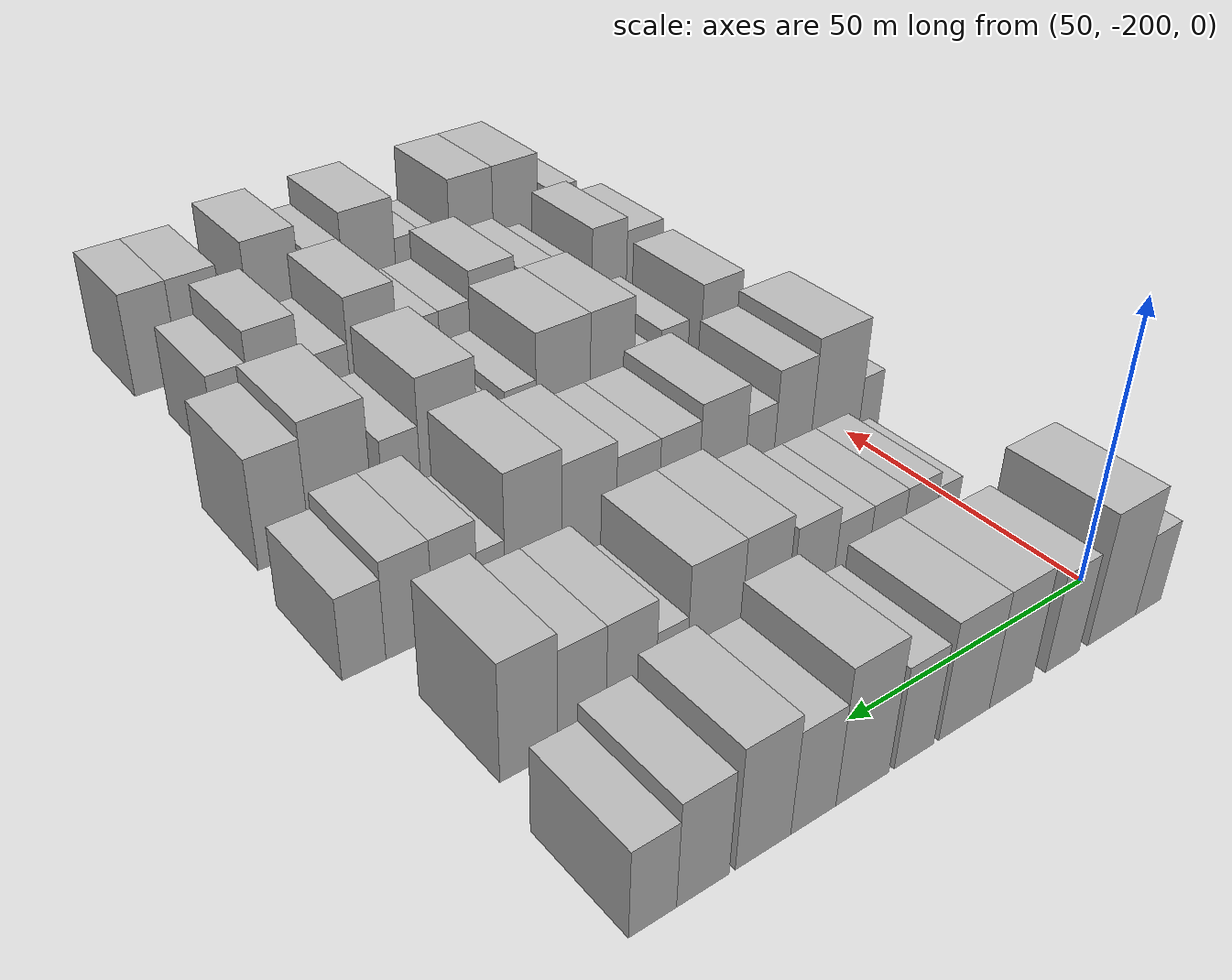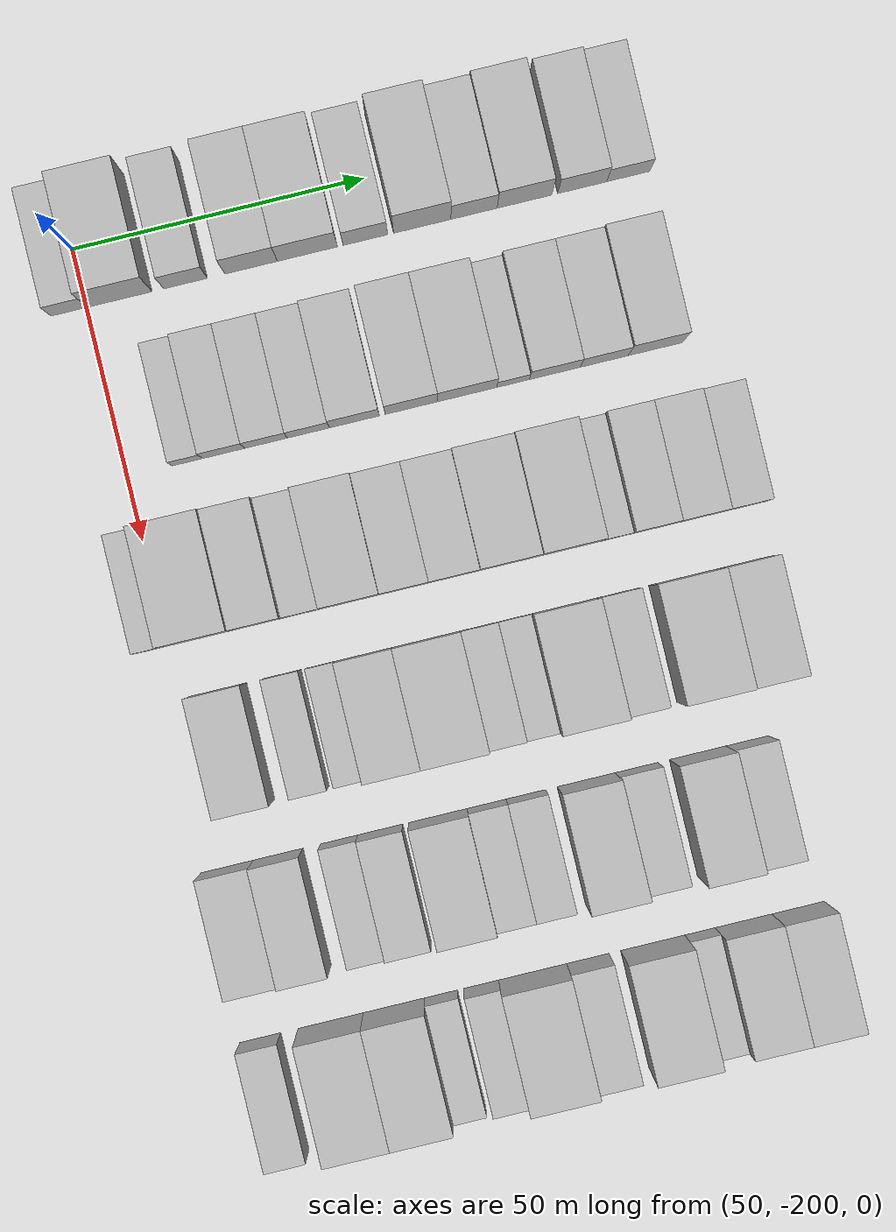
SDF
<sdf version="1.6">
 <world name="default">
  <model name="building_36">
   <static>1</static>
   <pose>50.0000 -202.9590 0 0.000000 0.000000 0.000000</pose>
   <link name="link">
    <pose>0 0 7.50 0 0 0</pose>
    <collision name="collision"><geometry><box><size>20.0000 6.1561 15.0000</size></box></geometry></collision>
    <visual name="visual">
     <cast_shadows>0</cast_shadows>
     <geometry><box><size>20.0000 6.1561 15.0000</size></box></geometry>
     <material>
      <script>
       <uri>model://HANNAS_wall/materials/scripts</uri>
       <uri>model://HANNAS_wall/materials/textures</uri>
       <name>vrc/HANNAS_wall</name>
      </script>
     </material>
    </visual>
   </link>
  </model>
  <model name="building_37">
   <static>1</static>
   <pose>50.0000 -194.3039 0 0.000000 0.000000 0.000000</pose>
   <link name="link">
    <pose>0 0 12.00 0 0 0</pose>
    <collision name="collision"><geometry><box><size>20.0000 11.1541 24.0000</size></box></geometry></collision>
    <visual name="visual">
     <cast_shadows>0</cast_shadows>
     <geometry><box><size>20.0000 11.1541 24.0000</size></box></geometry>
     <material>
      <script>
       <uri>model://HANNAS_wall/materials/scripts</uri>
       <uri>model://HANNAS_wall/materials/textures</uri>
       <name>vrc/HANNAS_wall</name>
      </script>
     </material>
    </visual>
   </link>
  </model>
  <model name="building_38">
   <static>1</static>
   <pose>50.0000 -182.9906 0 0.000000 0.000000 0.000000</pose>
   <link name="link">
    <pose>0 0 9.00 0 0 0</pose>
    <collision name="collision"><geometry><box><size>20.0000 7.4726 18.0000</size></box></geometry></collision>
    <visual name="visual">
     <cast_shadows>0</cast_shadows>
     <geometry><box><size>20.0000 7.4726 18.0000</size></box></geometry>
     <material>
      <script>
       <uri>model://HANNAS_wall/materials/scripts</uri>
       <uri>model://HANNAS_wall/materials/textures</uri>
       <name>vrc/HANNAS_wall</name>
      </script>
     </material>
    </visual>
   </link>
  </model>
  <model name="building_39">
   <static>1</static>
   <pose>50.0000 -171.7510 0 0.000000 0.000000 0.000000</pose>
   <link name="link">
    <pose>0 0 10.50 0 0 0</pose>
    <collision name="collision"><geometry><box><size>20.0000 9.0066 21.0000</size></box></geometry></collision>
    <visual name="visual">
     <cast_shadows>0</cast_shadows>
     <geometry><box><size>20.0000 9.0066 21.0000</size></box></geometry>
     <material>
      <script>
       <uri>model://HANNAS_wall/materials/scripts</uri>
       <uri>model://HANNAS_wall/materials/textures</uri>
       <name>vrc/HANNAS_wall</name>
      </script>
     </material>
    </visual>
   </link>
  </model>
  <model name="building_40">
   <static>1</static>
   <pose>50.0000 -162.1197 0 0.000000 0.000000 0.000000</pose>
   <link name="link">
    <pose>0 0 10.50 0 0 0</pose>
    <collision name="collision"><geometry><box><size>20.0000 10.2560 21.0000</size></box></geometry></collision>
    <visual name="visual">
     <cast_shadows>0</cast_shadows>
     <geometry><box><size>20.0000 10.2560 21.0000</size></box></geometry>
     <material>
      <script>
       <uri>model://HANNAS_wall/materials/scripts</uri>
       <uri>model://HANNAS_wall/materials/textures</uri>
       <name>vrc/HANNAS_wall</name>
      </script>
     </material>
    </visual>
   </link>
  </model>
  <model name="building_41">
   <static>1</static>
   <pose>50.0000 -152.1916 0 0.000000 0.000000 0.000000</pose>
   <link name="link">
    <pose>0 0 9.00 0 0 0</pose>
    <collision name="collision"><geometry><box><size>20.0000 7.6002 18.0000</size></box></geometry></collision>
    <visual name="visual">
     <cast_shadows>0</cast_shadows>
     <geometry><box><size>20.0000 7.6002 18.0000</size></box></geometry>
     <material>
      <script>
       <uri>model://HANNAS_wall/materials/scripts</uri>
       <uri>model://HANNAS_wall/materials/textures</uri>
       <name>vrc/HANNAS_wall</name>
      </script>
     </material>
    </visual>
   </link>
  </model>
  <model name="building_42">
   <static>1</static>
   <pose>50.0000 -142.4848 0 0.000000 0.000000 0.000000</pose>
   <link name="link">
    <pose>0 0 12.00 0 0 0</pose>
    <collision name="collision"><geometry><box><size>20.0000 9.8133 24.0000</size></box></geometry></collision>
    <visual name="visual">
     <cast_shadows>0</cast_shadows>
     <geometry><box><size>20.0000 9.8133 24.0000</size></box></geometry>
     <material>
      <script>
       <uri>model://HANNAS_wall/materials/scripts</uri>
       <uri>model://HANNAS_wall/materials/textures</uri>
       <name>vrc/HANNAS_wall</name>
      </script>
     </material>
    </visual>
   </link>
  </model>
  <model name="building_43">
   <static>1</static>
   <pose>50.0000 -133.6154 0 0.000000 0.000000 0.000000</pose>
   <link name="link">
    <pose>0 0 9.00 0 0 0</pose>
    <collision name="collision"><geometry><box><size>20.0000 7.9256 18.0000</size></box></geometry></collision>
    <visual name="visual">
     <cast_shadows>0</cast_shadows>
     <geometry><box><size>20.0000 7.9256 18.0000</size></box></geometry>
     <material>
      <script>
       <uri>model://HANNAS_wall/materials/scripts</uri>
       <uri>model://HANNAS_wall/materials/textures</uri>
       <name>vrc/HANNAS_wall</name>
      </script>
     </material>
    </visual>
   </link>
  </model>
  <model name="building_44">
   <static>1</static>
   <pose>50.0000 -124.9787 0 0.000000 0.000000 0.000000</pose>
   <link name="link">
    <pose>0 0 10.50 0 0 0</pose>
    <collision name="collision"><geometry><box><size>20.0000 9.3477 21.0000</size></box></geometry></collision>
    <visual name="visual">
     <cast_shadows>0</cast_shadows>
     <geometry><box><size>20.0000 9.3477 21.0000</size></box></geometry>
     <material>
      <script>
       <uri>model://HANNAS_wall/materials/scripts</uri>
       <uri>model://HANNAS_wall/materials/textures</uri>
       <name>vrc/HANNAS_wall</name>
      </script>
     </material>
    </visual>
   </link>
  </model>
  <model name="building_45">
   <static>1</static>
   <pose>50.0000 -115.0980 0 0.000000 0.000000 0.000000</pose>
   <link name="link">
    <pose>0 0 9.00 0 0 0</pose>
    <collision name="collision"><geometry><box><size>20.0000 8.4137 18.0000</size></box></geometry></collision>
    <visual name="visual">
     <cast_shadows>0</cast_shadows>
     <geometry><box><size>20.0000 8.4137 18.0000</size></box></geometry>
     <material>
      <script>
       <uri>model://HANNAS_wall/materials/scripts</uri>
       <uri>model://HANNAS_wall/materials/textures</uri>
       <name>vrc/HANNAS_wall</name>
      </script>
     </material>
    </visual>
   </link>
  </model>
  <model name="building_46">
   <static>1</static>
   <pose>50.0000 -107.2056 0 0.000000 0.000000 0.000000</pose>
   <link name="link">
    <pose>0 0 7.50 0 0 0</pose>
    <collision name="collision"><geometry><box><size>20.0000 7.3710 15.0000</size></box></geometry></collision>
    <visual name="visual">
     <cast_shadows>0</cast_shadows>
     <geometry><box><size>20.0000 7.3710 15.0000</size></box></geometry>
     <material>
      <script>
       <uri>model://HANNAS_wall/materials/scripts</uri>
       <uri>model://HANNAS_wall/materials/textures</uri>
       <name>vrc/HANNAS_wall</name>
      </script>
     </material>
    </visual>
   </link>
  </model>
  <model name="building_149">
   <static>1</static>
   <pose>79.0000 -189.6646 0 0.000000 0.000000 0.000000</pose>
   <link name="link">
    <pose>0 0 6.00 0 0 0</pose>
    <collision name="collision"><geometry><box><size>20.0000 5.2100 12.0000</size></box></geometry></collision>
    <visual name="visual">
     <cast_shadows>0</cast_shadows>
     <geometry><box><size>20.0000 5.2100 12.0000</size></box></geometry>
     <material>
      <script>
       <uri>model://HANNAS_wall/materials/scripts</uri>
       <uri>model://HANNAS_wall/materials/textures</uri>
       <name>vrc/HANNAS_wall</name>
      </script>
     </material>
    </visual>
   </link>
  </model>
  <model name="building_150">
   <static>1</static>
   <pose>79.0000 -183.4459 0 0.000000 0.000000 0.000000</pose>
   <link name="link">
    <pose>0 0 7.50 0 0 0</pose>
    <collision name="collision"><geometry><box><size>20.0000 7.2273 15.0000</size></box></geometry></collision>
    <visual name="visual">
     <cast_shadows>0</cast_shadows>
     <geometry><box><size>20.0000 7.2273 15.0000</size></box></geometry>
     <material>
      <script>
       <uri>model://HANNAS_wall/materials/scripts</uri>
       <uri>model://HANNAS_wall/materials/textures</uri>
       <name>vrc/HANNAS_wall</name>
      </script>
     </material>
    </visual>
   </link>
  </model>
  <model name="building_151">
   <static>1</static>
   <pose>79.0000 -176.1654 0 0.000000 0.000000 0.000000</pose>
   <link name="link">
    <pose>0 0 7.50 0 0 0</pose>
    <collision name="collision"><geometry><box><size>20.0000 7.3336 15.0000</size></box></geometry></collision>
    <visual name="visual">
     <cast_shadows>0</cast_shadows>
     <geometry><box><size>20.0000 7.3336 15.0000</size></box></geometry>
     <material>
      <script>
       <uri>model://HANNAS_wall/materials/scripts</uri>
       <uri>model://HANNAS_wall/materials/textures</uri>
       <name>vrc/HANNAS_wall</name>
      </script>
     </material>
    </visual>
   </link>
  </model>
  <model name="building_152">
   <static>1</static>
   <pose>79.0000 -168.9033 0 0.000000 0.000000 0.000000</pose>
   <link name="link">
    <pose>0 0 7.50 0 0 0</pose>
    <collision name="collision"><geometry><box><size>20.0000 7.1907 15.0000</size></box></geometry></collision>
    <visual name="visual">
     <cast_shadows>0</cast_shadows>
     <geometry><box><size>20.0000 7.1907 15.0000</size></box></geometry>
     <material>
      <script>
       <uri>model://HANNAS_wall/materials/scripts</uri>
       <uri>model://HANNAS_wall/materials/textures</uri>
       <name>vrc/HANNAS_wall</name>
      </script>
     </material>
    </visual>
   </link>
  </model>
  <model name="building_153">
   <static>1</static>
   <pose>79.0000 -161.0587 0 0.000000 0.000000 0.000000</pose>
   <link name="link">
    <pose>0 0 9.00 0 0 0</pose>
    <collision name="collision"><geometry><box><size>20.0000 8.4984 18.0000</size></box></geometry></collision>
    <visual name="visual">
     <cast_shadows>0</cast_shadows>
     <geometry><box><size>20.0000 8.4984 18.0000</size></box></geometry>
     <material>
      <script>
       <uri>model://HANNAS_wall/materials/scripts</uri>
       <uri>model://HANNAS_wall/materials/textures</uri>
       <name>vrc/HANNAS_wall</name>
      </script>
     </material>
    </visual>
   </link>
  </model>
  <model name="building_154">
   <static>1</static>
   <pose>79.0000 -151.3375 0 0.000000 0.000000 0.000000</pose>
   <link name="link">
    <pose>0 0 10.50 0 0 0</pose>
    <collision name="collision"><geometry><box><size>20.0000 8.9439 21.0000</size></box></geometry></collision>
    <visual name="visual">
     <cast_shadows>0</cast_shadows>
     <geometry><box><size>20.0000 8.9439 21.0000</size></box></geometry>
     <material>
      <script>
       <uri>model://HANNAS_wall/materials/scripts</uri>
       <uri>model://HANNAS_wall/materials/textures</uri>
       <name>vrc/HANNAS_wall</name>
      </script>
     </material>
    </visual>
   </link>
  </model>
  <model name="building_155">
   <static>1</static>
   <pose>79.0000 -141.8149 0 0.000000 0.000000 0.000000</pose>
   <link name="link">
    <pose>0 0 10.50 0 0 0</pose>
    <collision name="collision"><geometry><box><size>20.0000 10.1013 21.0000</size></box></geometry></collision>
    <visual name="visual">
     <cast_shadows>0</cast_shadows>
     <geometry><box><size>20.0000 10.1013 21.0000</size></box></geometry>
     <material>
      <script>
       <uri>model://HANNAS_wall/materials/scripts</uri>
       <uri>model://HANNAS_wall/materials/textures</uri>
       <name>vrc/HANNAS_wall</name>
      </script>
     </material>
    </visual>
   </link>
  </model>
  <model name="building_156">
   <static>1</static>
   <pose>79.0000 -133.9832 0 0.000000 0.000000 0.000000</pose>
   <link name="link">
    <pose>0 0 6.00 0 0 0</pose>
    <collision name="collision"><geometry><box><size>20.0000 5.5621 12.0000</size></box></geometry></collision>
    <visual name="visual">
     <cast_shadows>0</cast_shadows>
     <geometry><box><size>20.0000 5.5621 12.0000</size></box></geometry>
     <material>
      <script>
       <uri>model://HANNAS_wall/materials/scripts</uri>
       <uri>model://HANNAS_wall/materials/textures</uri>
       <name>vrc/HANNAS_wall</name>
      </script>
     </material>
    </visual>
   </link>
  </model>
  <model name="building_157">
   <static>1</static>
   <pose>79.0000 -126.8557 0 0.000000 0.000000 0.000000</pose>
   <link name="link">
    <pose>0 0 9.00 0 0 0</pose>
    <collision name="collision"><geometry><box><size>20.0000 8.6930 18.0000</size></box></geometry></collision>
    <visual name="visual">
     <cast_shadows>0</cast_shadows>
     <geometry><box><size>20.0000 8.6930 18.0000</size></box></geometry>
     <material>
      <script>
       <uri>model://HANNAS_wall/materials/scripts</uri>
       <uri>model://HANNAS_wall/materials/textures</uri>
       <name>vrc/HANNAS_wall</name>
      </script>
     </material>
    </visual>
   </link>
  </model>
  <model name="building_158">
   <static>1</static>
   <pose>79.0000 -118.4103 0 0.000000 0.000000 0.000000</pose>
   <link name="link">
    <pose>0 0 9.00 0 0 0</pose>
    <collision name="collision"><geometry><box><size>20.0000 8.1979 18.0000</size></box></geometry></collision>
    <visual name="visual">
     <cast_shadows>0</cast_shadows>
     <geometry><box><size>20.0000 8.1979 18.0000</size></box></geometry>
     <material>
      <script>
       <uri>model://HANNAS_wall/materials/scripts</uri>
       <uri>model://HANNAS_wall/materials/textures</uri>
       <name>vrc/HANNAS_wall</name>
      </script>
     </material>
    </visual>
   </link>
  </model>
  <model name="building_159">
   <static>1</static>
   <pose>79.0000 -109.6354 0 0.000000 0.000000 0.000000</pose>
   <link name="link">
    <pose>0 0 10.50 0 0 0</pose>
    <collision name="collision"><geometry><box><size>20.0000 9.3519 21.0000</size></box></geometry></collision>
    <visual name="visual">
     <cast_shadows>0</cast_shadows>
     <geometry><box><size>20.0000 9.3519 21.0000</size></box></geometry>
     <material>
      <script>
       <uri>model://HANNAS_wall/materials/scripts</uri>
       <uri>model://HANNAS_wall/materials/textures</uri>
       <name>vrc/HANNAS_wall</name>
      </script>
     </material>
    </visual>
   </link>
  </model>
  <model name="building_267">
   <static>1</static>
   <pose>108.0000 -202.9660 0 0.000000 0.000000 0.000000</pose>
   <link name="link">
    <pose>0 0 6.00 0 0 0</pose>
    <collision name="collision"><geometry><box><size>20.0000 4.9001 12.0000</size></box></geometry></collision>
    <visual name="visual">
     <cast_shadows>0</cast_shadows>
     <geometry><box><size>20.0000 4.9001 12.0000</size></box></geometry>
     <material>
      <script>
       <uri>model://HANNAS_wall/materials/scripts</uri>
       <uri>model://HANNAS_wall/materials/textures</uri>
       <name>vrc/HANNAS_wall</name>
      </script>
     </material>
    </visual>
   </link>
  </model>
  <model name="building_268">
   <static>1</static>
   <pose>108.0000 -194.6019 0 0.000000 0.000000 0.000000</pose>
   <link name="link">
    <pose>0 0 12.00 0 0 0</pose>
    <collision name="collision"><geometry><box><size>20.0000 11.8281 24.0000</size></box></geometry></collision>
    <visual name="visual">
     <cast_shadows>0</cast_shadows>
     <geometry><box><size>20.0000 11.8281 24.0000</size></box></geometry>
     <material>
      <script>
       <uri>model://HANNAS_wall/materials/scripts</uri>
       <uri>model://HANNAS_wall/materials/textures</uri>
       <name>vrc/HANNAS_wall</name>
      </script>
     </material>
    </visual>
   </link>
  </model>
  <model name="building_269">
   <static>1</static>
   <pose>108.0000 -184.4132 0 0.000000 0.000000 0.000000</pose>
   <link name="link">
    <pose>0 0 10.50 0 0 0</pose>
    <collision name="collision"><geometry><box><size>20.0000 8.5491 21.0000</size></box></geometry></collision>
    <visual name="visual">
     <cast_shadows>0</cast_shadows>
     <geometry><box><size>20.0000 8.5491 21.0000</size></box></geometry>
     <material>
      <script>
       <uri>model://HANNAS_wall/materials/scripts</uri>
       <uri>model://HANNAS_wall/materials/textures</uri>
       <name>vrc/HANNAS_wall</name>
      </script>
     </material>
    </visual>
   </link>
  </model>
  <model name="building_270">
   <static>1</static>
   <pose>108.0000 -176.9168 0 0.000000 0.000000 0.000000</pose>
   <link name="link">
    <pose>0 0 7.50 0 0 0</pose>
    <collision name="collision"><geometry><box><size>20.0000 6.4438 15.0000</size></box></geometry></collision>
    <visual name="visual">
     <cast_shadows>0</cast_shadows>
     <geometry><box><size>20.0000 6.4438 15.0000</size></box></geometry>
     <material>
      <script>
       <uri>model://HANNAS_wall/materials/scripts</uri>
       <uri>model://HANNAS_wall/materials/textures</uri>
       <name>vrc/HANNAS_wall</name>
      </script>
     </material>
    </visual>
   </link>
  </model>
  <model name="building_271">
   <static>1</static>
   <pose>108.0000 -168.6737 0 0.000000 0.000000 0.000000</pose>
   <link name="link">
    <pose>0 0 10.50 0 0 0</pose>
    <collision name="collision"><geometry><box><size>20.0000 10.0424 21.0000</size></box></geometry></collision>
    <visual name="visual">
     <cast_shadows>0</cast_shadows>
     <geometry><box><size>20.0000 10.0424 21.0000</size></box></geometry>
     <material>
      <script>
       <uri>model://HANNAS_wall/materials/scripts</uri>
       <uri>model://HANNAS_wall/materials/textures</uri>
       <name>vrc/HANNAS_wall</name>
      </script>
     </material>
    </visual>
   </link>
  </model>
  <model name="building_272">
   <static>1</static>
   <pose>108.0000 -159.5205 0 0.000000 0.000000 0.000000</pose>
   <link name="link">
    <pose>0 0 9.00 0 0 0</pose>
    <collision name="collision"><geometry><box><size>20.0000 8.2640 18.0000</size></box></geometry></collision>
    <visual name="visual">
     <cast_shadows>0</cast_shadows>
     <geometry><box><size>20.0000 8.2640 18.0000</size></box></geometry>
     <material>
      <script>
       <uri>model://HANNAS_wall/materials/scripts</uri>
       <uri>model://HANNAS_wall/materials/textures</uri>
       <name>vrc/HANNAS_wall</name>
      </script>
     </material>
    </visual>
   </link>
  </model>
  <model name="building_273">
   <static>1</static>
   <pose>108.0000 -151.0843 0 0.000000 0.000000 0.000000</pose>
   <link name="link">
    <pose>0 0 9.00 0 0 0</pose>
    <collision name="collision"><geometry><box><size>20.0000 8.6084 18.0000</size></box></geometry></collision>
    <visual name="visual">
     <cast_shadows>0</cast_shadows>
     <geometry><box><size>20.0000 8.6084 18.0000</size></box></geometry>
     <material>
      <script>
       <uri>model://HANNAS_wall/materials/scripts</uri>
       <uri>model://HANNAS_wall/materials/textures</uri>
       <name>vrc/HANNAS_wall</name>
      </script>
     </material>
    </visual>
   </link>
  </model>
  <model name="building_274">
   <static>1</static>
   <pose>108.0000 -141.5695 0 0.000000 0.000000 0.000000</pose>
   <link name="link">
    <pose>0 0 10.50 0 0 0</pose>
    <collision name="collision"><geometry><box><size>20.0000 10.4212 21.0000</size></box></geometry></collision>
    <visual name="visual">
     <cast_shadows>0</cast_shadows>
     <geometry><box><size>20.0000 10.4212 21.0000</size></box></geometry>
     <material>
      <script>
       <uri>model://HANNAS_wall/materials/scripts</uri>
       <uri>model://HANNAS_wall/materials/textures</uri>
       <name>vrc/HANNAS_wall</name>
      </script>
     </material>
    </visual>
   </link>
  </model>
  <model name="building_275">
   <static>1</static>
   <pose>108.0000 -131.1088 0 0.000000 0.000000 0.000000</pose>
   <link name="link">
    <pose>0 0 12.00 0 0 0</pose>
    <collision name="collision"><geometry><box><size>20.0000 10.5001 24.0000</size></box></geometry></collision>
    <visual name="visual">
     <cast_shadows>0</cast_shadows>
     <geometry><box><size>20.0000 10.5001 24.0000</size></box></geometry>
     <material>
      <script>
       <uri>model://HANNAS_wall/materials/scripts</uri>
       <uri>model://HANNAS_wall/materials/textures</uri>
       <name>vrc/HANNAS_wall</name>
      </script>
     </material>
    </visual>
   </link>
  </model>
  <model name="building_276">
   <static>1</static>
   <pose>108.0000 -123.3788 0 0.000000 0.000000 0.000000</pose>
   <link name="link">
    <pose>0 0 6.00 0 0 0</pose>
    <collision name="collision"><geometry><box><size>20.0000 4.9599 12.0000</size></box></geometry></collision>
    <visual name="visual">
     <cast_shadows>0</cast_shadows>
     <geometry><box><size>20.0000 4.9599 12.0000</size></box></geometry>
     <material>
      <script>
       <uri>model://HANNAS_wall/materials/scripts</uri>
       <uri>model://HANNAS_wall/materials/textures</uri>
       <name>vrc/HANNAS_wall</name>
      </script>
     </material>
    </visual>
   </link>
  </model>
  <model name="building_277">
   <static>1</static>
   <pose>108.0000 -117.0009 0 0.000000 0.000000 0.000000</pose>
   <link name="link">
    <pose>0 0 9.00 0 0 0</pose>
    <collision name="collision"><geometry><box><size>20.0000 7.7957 18.0000</size></box></geometry></collision>
    <visual name="visual">
     <cast_shadows>0</cast_shadows>
     <geometry><box><size>20.0000 7.7957 18.0000</size></box></geometry>
     <material>
      <script>
       <uri>model://HANNAS_wall/materials/scripts</uri>
       <uri>model://HANNAS_wall/materials/textures</uri>
       <name>vrc/HANNAS_wall</name>
      </script>
     </material>
    </visual>
   </link>
  </model>
  <model name="building_278">
   <static>1</static>
   <pose>108.0000 -109.0251 0 0.000000 0.000000 0.000000</pose>
   <link name="link">
    <pose>0 0 9.00 0 0 0</pose>
    <collision name="collision"><geometry><box><size>20.0000 8.1560 18.0000</size></box></geometry></collision>
    <visual name="visual">
     <cast_shadows>0</cast_shadows>
     <geometry><box><size>20.0000 8.1560 18.0000</size></box></geometry>
     <material>
      <script>
       <uri>model://HANNAS_wall/materials/scripts</uri>
       <uri>model://HANNAS_wall/materials/textures</uri>
       <name>vrc/HANNAS_wall</name>
      </script>
     </material>
    </visual>
   </link>
  </model>
  <model name="building_279">
   <static>1</static>
   <pose>108.0000 -101.3275 0 0.000000 0.000000 0.000000</pose>
   <link name="link">
    <pose>0 0 7.50 0 0 0</pose>
    <collision name="collision"><geometry><box><size>20.0000 7.2392 15.0000</size></box></geometry></collision>
    <visual name="visual">
     <cast_shadows>0</cast_shadows>
     <geometry><box><size>20.0000 7.2392 15.0000</size></box></geometry>
     <material>
      <script>
       <uri>model://HANNAS_wall/materials/scripts</uri>
       <uri>model://HANNAS_wall/materials/textures</uri>
       <name>vrc/HANNAS_wall</name>
      </script>
     </material>
    </visual>
   </link>
  </model>
  <model name="building_381">
   <static>1</static>
   <pose>137.0000 -193.4882 0 0.000000 0.000000 0.000000</pose>
   <link name="link">
    <pose>0 0 10.50 0 0 0</pose>
    <collision name="collision"><geometry><box><size>20.0000 9.4685 21.0000</size></box></geometry></collision>
    <visual name="visual">
     <cast_shadows>0</cast_shadows>
     <geometry><box><size>20.0000 9.4685 21.0000</size></box></geometry>
     <material>
      <script>
       <uri>model://HANNAS_wall/materials/scripts</uri>
       <uri>model://HANNAS_wall/materials/textures</uri>
       <name>vrc/HANNAS_wall</name>
      </script>
     </material>
    </visual>
   </link>
  </model>
  <model name="building_382">
   <static>1</static>
   <pose>137.0000 -182.5853 0 0.000000 0.000000 0.000000</pose>
   <link name="link">
    <pose>0 0 7.50 0 0 0</pose>
    <collision name="collision"><geometry><box><size>20.0000 6.3373 15.0000</size></box></geometry></collision>
    <visual name="visual">
     <cast_shadows>0</cast_shadows>
     <geometry><box><size>20.0000 6.3373 15.0000</size></box></geometry>
     <material>
      <script>
       <uri>model://HANNAS_wall/materials/scripts</uri>
       <uri>model://HANNAS_wall/materials/textures</uri>
       <name>vrc/HANNAS_wall</name>
      </script>
     </material>
    </visual>
   </link>
  </model>
  <model name="building_383">
   <static>1</static>
   <pose>137.0000 -175.8687 0 0.000000 0.000000 0.000000</pose>
   <link name="link">
    <pose>0 0 6.00 0 0 0</pose>
    <collision name="collision"><geometry><box><size>20.0000 5.0958 12.0000</size></box></geometry></collision>
    <visual name="visual">
     <cast_shadows>0</cast_shadows>
     <geometry><box><size>20.0000 5.0958 12.0000</size></box></geometry>
     <material>
      <script>
       <uri>model://HANNAS_wall/materials/scripts</uri>
       <uri>model://HANNAS_wall/materials/textures</uri>
       <name>vrc/HANNAS_wall</name>
      </script>
     </material>
    </visual>
   </link>
  </model>
  <model name="building_384">
   <static>1</static>
   <pose>137.0000 -168.5042 0 0.000000 0.000000 0.000000</pose>
   <link name="link">
    <pose>0 0 12.00 0 0 0</pose>
    <collision name="collision"><geometry><box><size>20.0000 9.6332 24.0000</size></box></geometry></collision>
    <visual name="visual">
     <cast_shadows>0</cast_shadows>
     <geometry><box><size>20.0000 9.6332 24.0000</size></box></geometry>
     <material>
      <script>
       <uri>model://HANNAS_wall/materials/scripts</uri>
       <uri>model://HANNAS_wall/materials/textures</uri>
       <name>vrc/HANNAS_wall</name>
      </script>
     </material>
    </visual>
   </link>
  </model>
  <model name="building_385">
   <static>1</static>
   <pose>137.0000 -157.9758 0 0.000000 0.000000 0.000000</pose>
   <link name="link">
    <pose>0 0 12.00 0 0 0</pose>
    <collision name="collision"><geometry><box><size>20.0000 11.4236 24.0000</size></box></geometry></collision>
    <visual name="visual">
     <cast_shadows>0</cast_shadows>
     <geometry><box><size>20.0000 11.4236 24.0000</size></box></geometry>
     <material>
      <script>
       <uri>model://HANNAS_wall/materials/scripts</uri>
       <uri>model://HANNAS_wall/materials/textures</uri>
       <name>vrc/HANNAS_wall</name>
      </script>
     </material>
    </visual>
   </link>
  </model>
  <model name="building_386">
   <static>1</static>
   <pose>137.0000 -149.0797 0 0.000000 0.000000 0.000000</pose>
   <link name="link">
    <pose>0 0 7.50 0 0 0</pose>
    <collision name="collision"><geometry><box><size>20.0000 6.3686 15.0000</size></box></geometry></collision>
    <visual name="visual">
     <cast_shadows>0</cast_shadows>
     <geometry><box><size>20.0000 6.3686 15.0000</size></box></geometry>
     <material>
      <script>
       <uri>model://HANNAS_wall/materials/scripts</uri>
       <uri>model://HANNAS_wall/materials/textures</uri>
       <name>vrc/HANNAS_wall</name>
      </script>
     </material>
    </visual>
   </link>
  </model>
  <model name="building_387">
   <static>1</static>
   <pose>137.0000 -143.0872 0 0.000000 0.000000 0.000000</pose>
   <link name="link">
    <pose>0 0 6.00 0 0 0</pose>
    <collision name="collision"><geometry><box><size>20.0000 5.6165 12.0000</size></box></geometry></collision>
    <visual name="visual">
     <cast_shadows>0</cast_shadows>
     <geometry><box><size>20.0000 5.6165 12.0000</size></box></geometry>
     <material>
      <script>
       <uri>model://HANNAS_wall/materials/scripts</uri>
       <uri>model://HANNAS_wall/materials/textures</uri>
       <name>vrc/HANNAS_wall</name>
      </script>
     </material>
    </visual>
   </link>
  </model>
  <model name="building_388">
   <static>1</static>
   <pose>137.0000 -134.6739 0 0.000000 0.000000 0.000000</pose>
   <link name="link">
    <pose>0 0 12.00 0 0 0</pose>
    <collision name="collision"><geometry><box><size>20.0000 11.2101 24.0000</size></box></geometry></collision>
    <visual name="visual">
     <cast_shadows>0</cast_shadows>
     <geometry><box><size>20.0000 11.2101 24.0000</size></box></geometry>
     <material>
      <script>
       <uri>model://HANNAS_wall/materials/scripts</uri>
       <uri>model://HANNAS_wall/materials/textures</uri>
       <name>vrc/HANNAS_wall</name>
      </script>
     </material>
    </visual>
   </link>
  </model>
  <model name="building_389">
   <static>1</static>
   <pose>137.0000 -125.4871 0 0.000000 0.000000 0.000000</pose>
   <link name="link">
    <pose>0 0 7.50 0 0 0</pose>
    <collision name="collision"><geometry><box><size>20.0000 7.1634 15.0000</size></box></geometry></collision>
    <visual name="visual">
     <cast_shadows>0</cast_shadows>
     <geometry><box><size>20.0000 7.1634 15.0000</size></box></geometry>
     <material>
      <script>
       <uri>model://HANNAS_wall/materials/scripts</uri>
       <uri>model://HANNAS_wall/materials/textures</uri>
       <name>vrc/HANNAS_wall</name>
      </script>
     </material>
    </visual>
   </link>
  </model>
  <model name="building_390">
   <static>1</static>
   <pose>137.0000 -114.1597 0 0.000000 0.000000 0.000000</pose>
   <link name="link">
    <pose>0 0 12.00 0 0 0</pose>
    <collision name="collision"><geometry><box><size>20.0000 11.4915 24.0000</size></box></geometry></collision>
    <visual name="visual">
     <cast_shadows>0</cast_shadows>
     <geometry><box><size>20.0000 11.4915 24.0000</size></box></geometry>
     <material>
      <script>
       <uri>model://HANNAS_wall/materials/scripts</uri>
       <uri>model://HANNAS_wall/materials/textures</uri>
       <name>vrc/HANNAS_wall</name>
      </script>
     </material>
    </visual>
   </link>
  </model>
  <model name="building_391">
   <static>1</static>
   <pose>137.0000 -103.8407 0 0.000000 0.000000 0.000000</pose>
   <link name="link">
    <pose>0 0 10.50 0 0 0</pose>
    <collision name="collision"><geometry><box><size>20.0000 9.1465 21.0000</size></box></geometry></collision>
    <visual name="visual">
     <cast_shadows>0</cast_shadows>
     <geometry><box><size>20.0000 9.1465 21.0000</size></box></geometry>
     <material>
      <script>
       <uri>model://HANNAS_wall/materials/scripts</uri>
       <uri>model://HANNAS_wall/materials/textures</uri>
       <name>vrc/HANNAS_wall</name>
      </script>
     </material>
    </visual>
   </link>
  </model>
  <model name="building_492">
   <static>1</static>
   <pose>166.0000 -199.0462 0 0.000000 0.000000 0.000000</pose>
   <link name="link">
    <pose>0 0 9.00 0 0 0</pose>
    <collision name="collision"><geometry><box><size>20.0000 8.9901 18.0000</size></box></geometry></collision>
    <visual name="visual">
     <cast_shadows>0</cast_shadows>
     <geometry><box><size>20.0000 8.9901 18.0000</size></box></geometry>
     <material>
      <script>
       <uri>model://HANNAS_wall/materials/scripts</uri>
       <uri>model://HANNAS_wall/materials/textures</uri>
       <name>vrc/HANNAS_wall</name>
      </script>
     </material>
    </visual>
   </link>
  </model>
  <model name="building_493">
   <static>1</static>
   <pose>166.0000 -190.3209 0 0.000000 0.000000 0.000000</pose>
   <link name="link">
    <pose>0 0 10.50 0 0 0</pose>
    <collision name="collision"><geometry><box><size>20.0000 8.4604 21.0000</size></box></geometry></collision>
    <visual name="visual">
     <cast_shadows>0</cast_shadows>
     <geometry><box><size>20.0000 8.4604 21.0000</size></box></geometry>
     <material>
      <script>
       <uri>model://HANNAS_wall/materials/scripts</uri>
       <uri>model://HANNAS_wall/materials/textures</uri>
       <name>vrc/HANNAS_wall</name>
      </script>
     </material>
    </visual>
   </link>
  </model>
  <model name="building_494">
   <static>1</static>
   <pose>166.0000 -179.8963 0 0.000000 0.000000 0.000000</pose>
   <link name="link">
    <pose>0 0 7.50 0 0 0</pose>
    <collision name="collision"><geometry><box><size>20.0000 6.3887 15.0000</size></box></geometry></collision>
    <visual name="visual">
     <cast_shadows>0</cast_shadows>
     <geometry><box><size>20.0000 6.3887 15.0000</size></box></geometry>
     <material>
      <script>
       <uri>model://HANNAS_wall/materials/scripts</uri>
       <uri>model://HANNAS_wall/materials/textures</uri>
       <name>vrc/HANNAS_wall</name>
      </script>
     </material>
    </visual>
   </link>
  </model>
  <model name="building_495">
   <static>1</static>
   <pose>166.0000 -172.8560 0 0.000000 0.000000 0.000000</pose>
   <link name="link">
    <pose>0 0 9.00 0 0 0</pose>
    <collision name="collision"><geometry><box><size>20.0000 7.6920 18.0000</size></box></geometry></collision>
    <visual name="visual">
     <cast_shadows>0</cast_shadows>
     <geometry><box><size>20.0000 7.6920 18.0000</size></box></geometry>
     <material>
      <script>
       <uri>model://HANNAS_wall/materials/scripts</uri>
       <uri>model://HANNAS_wall/materials/textures</uri>
       <name>vrc/HANNAS_wall</name>
      </script>
     </material>
    </visual>
   </link>
  </model>
  <model name="building_496">
   <static>1</static>
   <pose>166.0000 -163.0086 0 0.000000 0.000000 0.000000</pose>
   <link name="link">
    <pose>0 0 10.50 0 0 0</pose>
    <collision name="collision"><geometry><box><size>20.0000 10.0027 21.0000</size></box></geometry></collision>
    <visual name="visual">
     <cast_shadows>0</cast_shadows>
     <geometry><box><size>20.0000 10.0027 21.0000</size></box></geometry>
     <material>
      <script>
       <uri>model://HANNAS_wall/materials/scripts</uri>
       <uri>model://HANNAS_wall/materials/textures</uri>
       <name>vrc/HANNAS_wall</name>
      </script>
     </material>
    </visual>
   </link>
  </model>
  <model name="building_497">
   <static>1</static>
   <pose>166.0000 -154.6874 0 0.000000 0.000000 0.000000</pose>
   <link name="link">
    <pose>0 0 7.50 0 0 0</pose>
    <collision name="collision"><geometry><box><size>20.0000 6.6398 15.0000</size></box></geometry></collision>
    <visual name="visual">
     <cast_shadows>0</cast_shadows>
     <geometry><box><size>20.0000 6.6398 15.0000</size></box></geometry>
     <material>
      <script>
       <uri>model://HANNAS_wall/materials/scripts</uri>
       <uri>model://HANNAS_wall/materials/textures</uri>
       <name>vrc/HANNAS_wall</name>
      </script>
     </material>
    </visual>
   </link>
  </model>
  <model name="building_498">
   <static>1</static>
   <pose>166.0000 -147.9785 0 0.000000 0.000000 0.000000</pose>
   <link name="link">
    <pose>0 0 7.50 0 0 0</pose>
    <collision name="collision"><geometry><box><size>20.0000 6.7781 15.0000</size></box></geometry></collision>
    <visual name="visual">
     <cast_shadows>0</cast_shadows>
     <geometry><box><size>20.0000 6.7781 15.0000</size></box></geometry>
     <material>
      <script>
       <uri>model://HANNAS_wall/materials/scripts</uri>
       <uri>model://HANNAS_wall/materials/textures</uri>
       <name>vrc/HANNAS_wall</name>
      </script>
     </material>
    </visual>
   </link>
  </model>
  <model name="building_499">
   <static>1</static>
   <pose>166.0000 -137.6314 0 0.000000 0.000000 0.000000</pose>
   <link name="link">
    <pose>0 0 12.00 0 0 0</pose>
    <collision name="collision"><geometry><box><size>20.0000 9.9160 24.0000</size></box></geometry></collision>
    <visual name="visual">
     <cast_shadows>0</cast_shadows>
     <geometry><box><size>20.0000 9.9160 24.0000</size></box></geometry>
     <material>
      <script>
       <uri>model://HANNAS_wall/materials/scripts</uri>
       <uri>model://HANNAS_wall/materials/textures</uri>
       <name>vrc/HANNAS_wall</name>
      </script>
     </material>
    </visual>
   </link>
  </model>
  <model name="building_500">
   <static>1</static>
   <pose>166.0000 -129.0251 0 0.000000 0.000000 0.000000</pose>
   <link name="link">
    <pose>0 0 7.50 0 0 0</pose>
    <collision name="collision"><geometry><box><size>20.0000 7.2967 15.0000</size></box></geometry></collision>
    <visual name="visual">
     <cast_shadows>0</cast_shadows>
     <geometry><box><size>20.0000 7.2967 15.0000</size></box></geometry>
     <material>
      <script>
       <uri>model://HANNAS_wall/materials/scripts</uri>
       <uri>model://HANNAS_wall/materials/textures</uri>
       <name>vrc/HANNAS_wall</name>
      </script>
     </material>
    </visual>
   </link>
  </model>
  <model name="building_501">
   <static>1</static>
   <pose>166.0000 -118.5580 0 0.000000 0.000000 0.000000</pose>
   <link name="link">
    <pose>0 0 12.00 0 0 0</pose>
    <collision name="collision"><geometry><box><size>20.0000 9.6374 24.0000</size></box></geometry></collision>
    <visual name="visual">
     <cast_shadows>0</cast_shadows>
     <geometry><box><size>20.0000 9.6374 24.0000</size></box></geometry>
     <material>
      <script>
       <uri>model://HANNAS_wall/materials/scripts</uri>
       <uri>model://HANNAS_wall/materials/textures</uri>
       <name>vrc/HANNAS_wall</name>
      </script>
     </material>
    </visual>
   </link>
  </model>
  <model name="building_502">
   <static>1</static>
   <pose>166.0000 -110.0866 0 0.000000 0.000000 0.000000</pose>
   <link name="link">
    <pose>0 0 9.00 0 0 0</pose>
    <collision name="collision"><geometry><box><size>20.0000 7.3053 18.0000</size></box></geometry></collision>
    <visual name="visual">
     <cast_shadows>0</cast_shadows>
     <geometry><box><size>20.0000 7.3053 18.0000</size></box></geometry>
     <material>
      <script>
       <uri>model://HANNAS_wall/materials/scripts</uri>
       <uri>model://HANNAS_wall/materials/textures</uri>
       <name>vrc/HANNAS_wall</name>
      </script>
     </material>
    </visual>
   </link>
  </model>
  <model name="building_608">
   <static>1</static>
   <pose>195.0000 -200.4284 0 0.000000 0.000000 0.000000</pose>
   <link name="link">
    <pose>0 0 7.50 0 0 0</pose>
    <collision name="collision"><geometry><box><size>20.0000 7.0103 15.0000</size></box></geometry></collision>
    <visual name="visual">
     <cast_shadows>0</cast_shadows>
     <geometry><box><size>20.0000 7.0103 15.0000</size></box></geometry>
     <material>
      <script>
       <uri>model://HANNAS_wall/materials/scripts</uri>
       <uri>model://HANNAS_wall/materials/textures</uri>
       <name>vrc/HANNAS_wall</name>
      </script>
     </material>
    </visual>
   </link>
  </model>
  <model name="building_609">
   <static>1</static>
   <pose>195.0000 -188.3631 0 0.000000 0.000000 0.000000</pose>
   <link name="link">
    <pose>0 0 12.00 0 0 0</pose>
    <collision name="collision"><geometry><box><size>20.0000 11.1203 24.0000</size></box></geometry></collision>
    <visual name="visual">
     <cast_shadows>0</cast_shadows>
     <geometry><box><size>20.0000 11.1203 24.0000</size></box></geometry>
     <material>
      <script>
       <uri>model://HANNAS_wall/materials/scripts</uri>
       <uri>model://HANNAS_wall/materials/textures</uri>
       <name>vrc/HANNAS_wall</name>
      </script>
     </material>
    </visual>
   </link>
  </model>
  <model name="building_610">
   <static>1</static>
   <pose>195.0000 -177.5501 0 0.000000 0.000000 0.000000</pose>
   <link name="link">
    <pose>0 0 12.00 0 0 0</pose>
    <collision name="collision"><geometry><box><size>20.0000 10.5058 24.0000</size></box></geometry></collision>
    <visual name="visual">
     <cast_shadows>0</cast_shadows>
     <geometry><box><size>20.0000 10.5058 24.0000</size></box></geometry>
     <material>
      <script>
       <uri>model://HANNAS_wall/materials/scripts</uri>
       <uri>model://HANNAS_wall/materials/textures</uri>
       <name>vrc/HANNAS_wall</name>
      </script>
     </material>
    </visual>
   </link>
  </model>
  <model name="building_611">
   <static>1</static>
   <pose>195.0000 -169.4787 0 0.000000 0.000000 0.000000</pose>
   <link name="link">
    <pose>0 0 6.00 0 0 0</pose>
    <collision name="collision"><geometry><box><size>20.0000 5.6372 12.0000</size></box></geometry></collision>
    <visual name="visual">
     <cast_shadows>0</cast_shadows>
     <geometry><box><size>20.0000 5.6372 12.0000</size></box></geometry>
     <material>
      <script>
       <uri>model://HANNAS_wall/materials/scripts</uri>
       <uri>model://HANNAS_wall/materials/textures</uri>
       <name>vrc/HANNAS_wall</name>
      </script>
     </material>
    </visual>
   </link>
  </model>
  <model name="building_612">
   <static>1</static>
   <pose>195.0000 -162.6440 0 0.000000 0.000000 0.000000</pose>
   <link name="link">
    <pose>0 0 7.50 0 0 0</pose>
    <collision name="collision"><geometry><box><size>20.0000 6.0322 15.0000</size></box></geometry></collision>
    <visual name="visual">
     <cast_shadows>0</cast_shadows>
     <geometry><box><size>20.0000 6.0322 15.0000</size></box></geometry>
     <material>
      <script>
       <uri>model://HANNAS_wall/materials/scripts</uri>
       <uri>model://HANNAS_wall/materials/textures</uri>
       <name>vrc/HANNAS_wall</name>
      </script>
     </material>
    </visual>
   </link>
  </model>
  <model name="building_613">
   <static>1</static>
   <pose>195.0000 -153.7994 0 0.000000 0.000000 0.000000</pose>
   <link name="link">
    <pose>0 0 12.00 0 0 0</pose>
    <collision name="collision"><geometry><box><size>20.0000 11.6570 24.0000</size></box></geometry></collision>
    <visual name="visual">
     <cast_shadows>0</cast_shadows>
     <geometry><box><size>20.0000 11.6570 24.0000</size></box></geometry>
     <material>
      <script>
       <uri>model://HANNAS_wall/materials/scripts</uri>
       <uri>model://HANNAS_wall/materials/textures</uri>
       <name>vrc/HANNAS_wall</name>
      </script>
     </material>
    </visual>
   </link>
  </model>
  <model name="building_614">
   <static>1</static>
   <pose>195.0000 -144.3513 0 0.000000 0.000000 0.000000</pose>
   <link name="link">
    <pose>0 0 9.00 0 0 0</pose>
    <collision name="collision"><geometry><box><size>20.0000 7.2393 18.0000</size></box></geometry></collision>
    <visual name="visual">
     <cast_shadows>0</cast_shadows>
     <geometry><box><size>20.0000 7.2393 18.0000</size></box></geometry>
     <material>
      <script>
       <uri>model://HANNAS_wall/materials/scripts</uri>
       <uri>model://HANNAS_wall/materials/textures</uri>
       <name>vrc/HANNAS_wall</name>
      </script>
     </material>
    </visual>
   </link>
  </model>
  <model name="building_615">
   <static>1</static>
   <pose>195.0000 -133.2322 0 0.000000 0.000000 0.000000</pose>
   <link name="link">
    <pose>0 0 12.00 0 0 0</pose>
    <collision name="collision"><geometry><box><size>20.0000 10.9988 24.0000</size></box></geometry></collision>
    <visual name="visual">
     <cast_shadows>0</cast_shadows>
     <geometry><box><size>20.0000 10.9988 24.0000</size></box></geometry>
     <material>
      <script>
       <uri>model://HANNAS_wall/materials/scripts</uri>
       <uri>model://HANNAS_wall/materials/textures</uri>
       <name>vrc/HANNAS_wall</name>
      </script>
     </material>
    </visual>
   </link>
  </model>
  <model name="building_616">
   <static>1</static>
   <pose>195.0000 -125.1357 0 0.000000 0.000000 0.000000</pose>
   <link name="link">
    <pose>0 0 6.00 0 0 0</pose>
    <collision name="collision"><geometry><box><size>20.0000 5.1943 12.0000</size></box></geometry></collision>
    <visual name="visual">
     <cast_shadows>0</cast_shadows>
     <geometry><box><size>20.0000 5.1943 12.0000</size></box></geometry>
     <material>
      <script>
       <uri>model://HANNAS_wall/materials/scripts</uri>
       <uri>model://HANNAS_wall/materials/textures</uri>
       <name>vrc/HANNAS_wall</name>
      </script>
     </material>
    </visual>
   </link>
  </model>
  <model name="building_617">
   <static>1</static>
   <pose>195.0000 -117.6715 0 0.000000 0.000000 0.000000</pose>
   <link name="link">
    <pose>0 0 10.50 0 0 0</pose>
    <collision name="collision"><geometry><box><size>20.0000 9.7341 21.0000</size></box></geometry></collision>
    <visual name="visual">
     <cast_shadows>0</cast_shadows>
     <geometry><box><size>20.0000 9.7341 21.0000</size></box></geometry>
     <material>
      <script>
       <uri>model://HANNAS_wall/materials/scripts</uri>
       <uri>model://HANNAS_wall/materials/textures</uri>
       <name>vrc/HANNAS_wall</name>
      </script>
     </material>
    </visual>
   </link>
  </model>
  <model name="building_618">
   <static>1</static>
   <pose>195.0000 -108.3184 0 0.000000 0.000000 0.000000</pose>
   <link name="link">
    <pose>0 0 10.50 0 0 0</pose>
    <collision name="collision"><geometry><box><size>20.0000 8.9721 21.0000</size></box></geometry></collision>
    <visual name="visual">
     <cast_shadows>0</cast_shadows>
     <geometry><box><size>20.0000 8.9721 21.0000</size></box></geometry>
     <material>
      <script>
       <uri>model://HANNAS_wall/materials/scripts</uri>
       <uri>model://HANNAS_wall/materials/textures</uri>
       <name>vrc/HANNAS_wall</name>
      </script>
     </material>
    </visual>
   </link>
  </model>
 </world>
</sdf>
